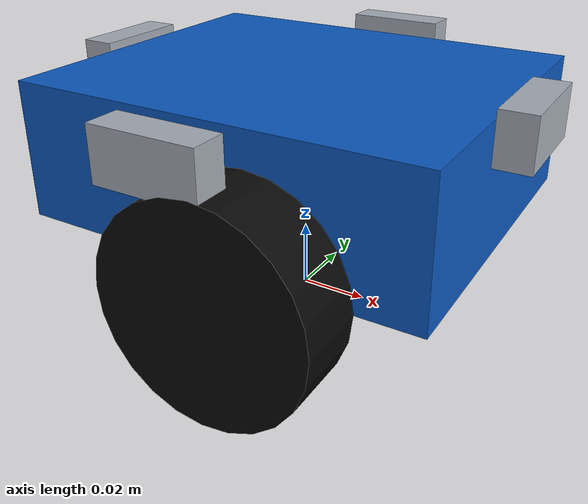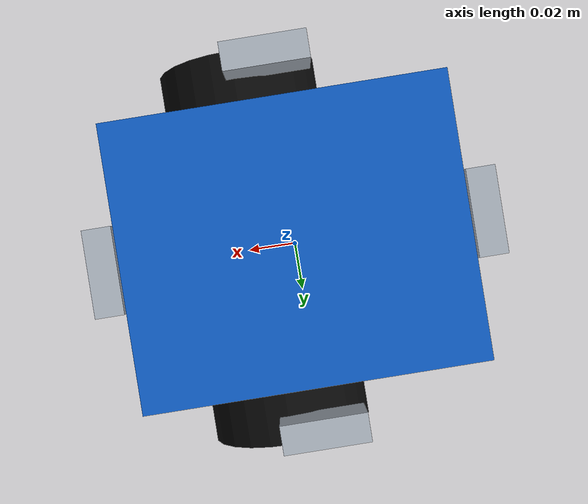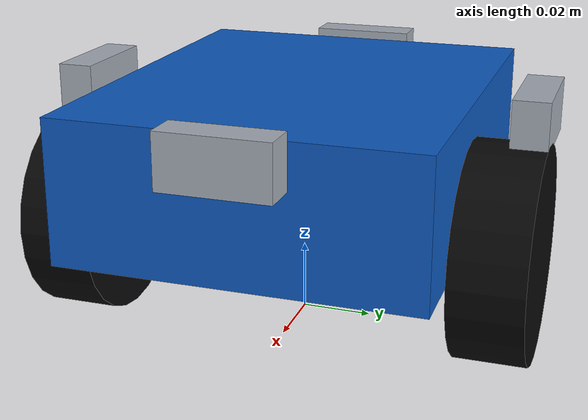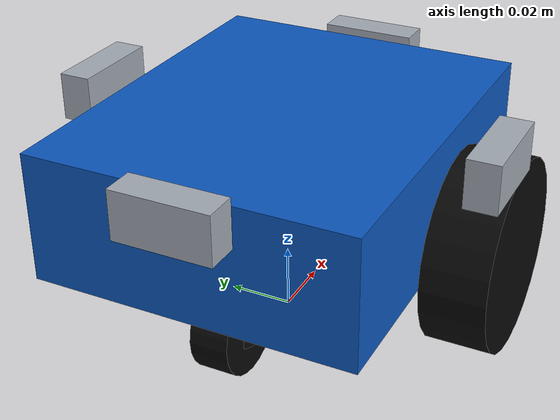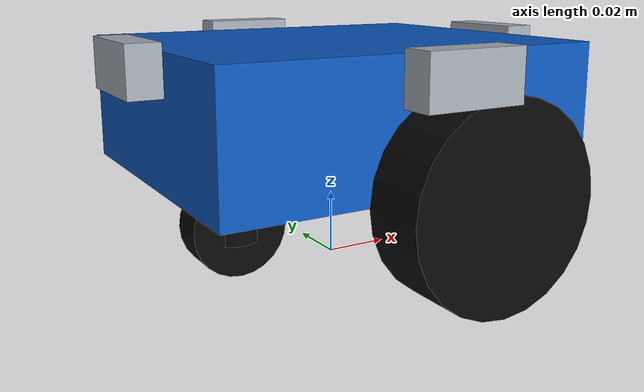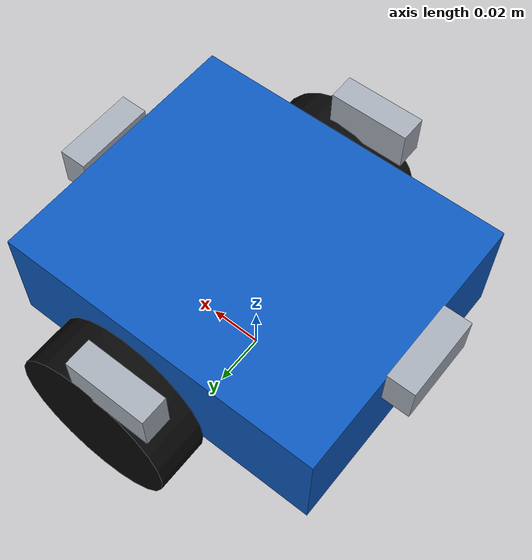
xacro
<?xml version="1.0"?>
<robot xmlns:xacro="http://www.ros.org/wiki/xacro" name="karel">
  <xacro:property name="body_length" value="0.12"/>
  <xacro:property name="body_width" value="0.10"/>
  <xacro:property name="body_height" value="0.04"/>
  <xacro:property name="wheel_radius" value="0.03"/>
  <xacro:property name="wheel_width" value="0.02"/>
  <xacro:property name="wheel_separation" value="0.12"/>

  <material name="karel_blue">
    <color rgba="0.05 0.35 0.75 1"/>
  </material>
  <material name="wheel_black">
    <color rgba="0.03 0.03 0.03 1"/>
  </material>
  <material name="sensor_gray">
    <color rgba="0.65 0.68 0.72 1"/>
  </material>

  <link name="base_footprint"/>

  <joint name="base_footprint_joint" type="fixed">
    <parent link="base_footprint"/>
    <child link="base_link"/>
    <origin xyz="0 0 0.05" rpy="0 0 0"/>
  </joint>

  <link name="base_link">
    <visual>
      <geometry><box size="${body_length} ${body_width} ${body_height}"/></geometry>
      <material name="karel_blue"/>
    </visual>
    <collision>
      <geometry><box size="${body_length} ${body_width} ${body_height}"/></geometry>
    </collision>
    <inertial>
      <mass value="0.35"/>
      <inertia ixx="0.00033833" ixy="0" ixz="0" iyy="0.00046667" iyz="0" izz="0.00071167"/>
    </inertial>
  </link>

  <xacro:macro name="drive_wheel" params="side y">
    <link name="wheel_${side}">
      <visual>
        <origin rpy="1.57079632679 0 0"/>
        <geometry><cylinder radius="${wheel_radius}" length="${wheel_width}"/></geometry>
        <material name="wheel_black"/>
      </visual>
      <collision>
        <origin rpy="1.57079632679 0 0"/>
        <geometry><cylinder radius="${wheel_radius}" length="${wheel_width}"/></geometry>
      </collision>
      <inertial>
        <mass value="0.06"/>
        <inertia ixx="0.0000155" ixy="0" ixz="0" iyy="0.000027" iyz="0" izz="0.0000155"/>
      </inertial>
    </link>
    <joint name="wheel_${side}_connect" type="continuous">
      <parent link="base_link"/>
      <child link="wheel_${side}"/>
      <origin xyz="0.012 ${y} -0.02" rpy="0 0 0"/>
      <axis xyz="0 1 0"/>
      <dynamics damping="0.02" friction="0"/>
    </joint>
  </xacro:macro>

  <xacro:drive_wheel side="left" y="${wheel_separation/2}"/>
  <xacro:drive_wheel side="right" y="-${wheel_separation/2}"/>

  <link name="caster_yaw_link">
    <visual>
      <geometry><cylinder radius="0.008" length="0.01"/></geometry>
      <material name="wheel_black"/>
    </visual>
    <inertial>
      <mass value="0.005"/>
      <inertia ixx="0.0000001217" ixy="0" ixz="0" iyy="0.0000001217" iyz="0" izz="0.00000016"/>
    </inertial>
  </link>
  <joint name="caster_yaw_joint" type="continuous">
    <parent link="base_link"/>
    <child link="caster_yaw_link"/>
    <origin xyz="-0.035 0 -0.035" rpy="0 0 0"/>
    <axis xyz="0 0 1"/>
    <dynamics damping="0.02" friction="0"/>
  </joint>

  <link name="caster_wheel_link">
    <visual>
      <origin rpy="1.57079632679 0 0"/>
      <geometry><cylinder radius="0.015" length="0.012"/></geometry>
      <material name="wheel_black"/>
    </visual>
    <collision>
      <origin rpy="1.57079632679 0 0"/>
      <geometry><cylinder radius="0.015" length="0.012"/></geometry>
    </collision>
    <inertial>
      <mass value="0.02"/>
      <inertia ixx="0.000001365" ixy="0" ixz="0" iyy="0.00000225" iyz="0" izz="0.000001365"/>
    </inertial>
  </link>
  <joint name="caster_wheel_joint" type="continuous">
    <parent link="caster_yaw_link"/>
    <child link="caster_wheel_link"/>
    <origin xyz="0 0 0" rpy="0 0 0"/>
    <axis xyz="0 1 0"/>
    <dynamics damping="0.005" friction="0"/>
  </joint>

  <xacro:macro name="ultrasonic_sensor" params="name x y yaw topic">
    <link name="${name}_link">
      <visual>
        <geometry><box size="0.01 0.03 0.015"/></geometry>
        <material name="sensor_gray"/>
      </visual>
      <collision><geometry><box size="0.01 0.03 0.015"/></geometry></collision>
      <inertial>
        <mass value="0.01"/>
        <inertia ixx="0.00000094" ixy="0" ixz="0" iyy="0.00000027" iyz="0" izz="0.00000083"/>
      </inertial>
    </link>
    <joint name="${name}_joint" type="fixed">
      <parent link="base_link"/>
      <child link="${name}_link"/>
      <origin xyz="${x} ${y} 0.015" rpy="0 0 ${yaw}"/>
    </joint>
    <gazebo reference="${name}_link">
      <sensor type="ray" name="karel_${name}">
        <always_on>true</always_on>
        <visualize>true</visualize>
        <update_rate>20</update_rate>
        <ray>
          <scan>
            <horizontal>
              <samples>5</samples><resolution>1</resolution>
              <min_angle>-0.25</min_angle><max_angle>0.25</max_angle>
            </horizontal>
            <vertical>
              <samples>3</samples><resolution>1</resolution>
              <min_angle>-0.10</min_angle><max_angle>0.10</max_angle>
            </vertical>
          </scan>
          <range><min>0.02</min><max>4.0</max><resolution>0.005</resolution></range>
          <noise><type>gaussian</type><mean>0.0</mean><stddev>0.005</stddev></noise>
        </ray>
        <plugin name="karel_${name}_controller" filename="libgazebo_ros_range.so">
          <alwaysOn>true</alwaysOn>
          <updateRate>20</updateRate>
          <topicName>${topic}</topicName>
          <frameName>${name}_link</frameName>
          <fov>0.5</fov>
          <radiation>ultrasound</radiation>
          <gaussianNoise>0.005</gaussianNoise>
        </plugin>
      </sensor>
    </gazebo>
  </xacro:macro>

  <xacro:ultrasonic_sensor name="ultrasonic" x="0.065" y="0" yaw="0"
                           topic="/hardware/ultrasonic"/>
  <xacro:ultrasonic_sensor name="ultrasonic_back" x="-0.065" y="0" yaw="3.14159265359"
                           topic="/hardware/ultrasonic/back"/>
  <xacro:ultrasonic_sensor name="ultrasonic_left" x="0" y="0.065" yaw="1.57079632679"
                           topic="/hardware/ultrasonic/left"/>
  <xacro:ultrasonic_sensor name="ultrasonic_right" x="0" y="-0.065" yaw="-1.57079632679"
                           topic="/hardware/ultrasonic/right"/>

  <gazebo reference="wheel_left">
    <material>Gazebo/Black</material>
    <mu1>0.0</mu1><mu2>0.0</mu2>
  </gazebo>
  <gazebo reference="wheel_right">
    <material>Gazebo/Black</material>
    <mu1>0.0</mu1><mu2>0.0</mu2>
  </gazebo>
  <gazebo reference="caster_wheel_link">
    <material>Gazebo/Black</material>
    <mu1>0.0</mu1><mu2>0.0</mu2>
  </gazebo>

  <gazebo>
    <plugin name="karel_planar_move" filename="libgazebo_ros_planar_move.so">
      <commandTopic>/hardware/mobile_base/cmd_vel</commandTopic>
      <odometryTopic>/karel/odom</odometryTopic>
      <odometryFrame>odom</odometryFrame>
      <robotBaseFrame>base_footprint</robotBaseFrame>
      <odometryRate>50</odometryRate>
    </plugin>
  </gazebo>

  <gazebo>
    <plugin name="joint_state_publisher" filename="libgazebo_ros_joint_state_publisher.so">
      <robotNamespace>/</robotNamespace>
      <jointName>wheel_left_connect,wheel_right_connect,caster_yaw_joint,caster_wheel_joint</jointName>
      <updateRate>50</updateRate>
      <alwaysOn>true</alwaysOn>
    </plugin>
  </gazebo>

</robot>
